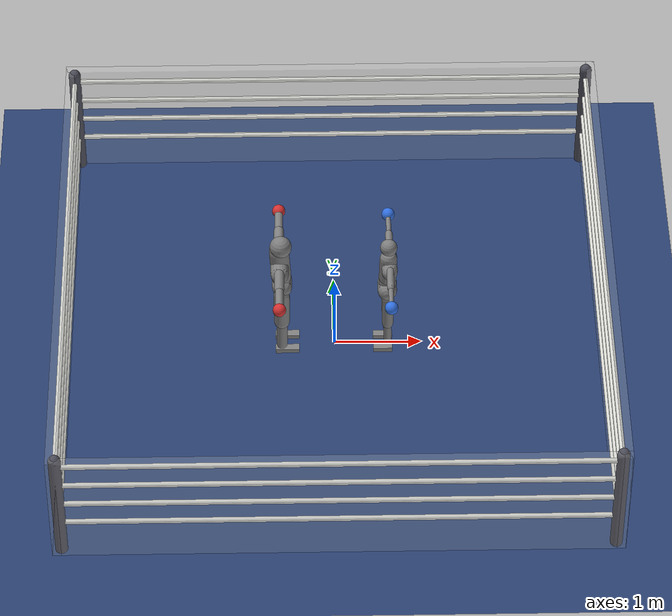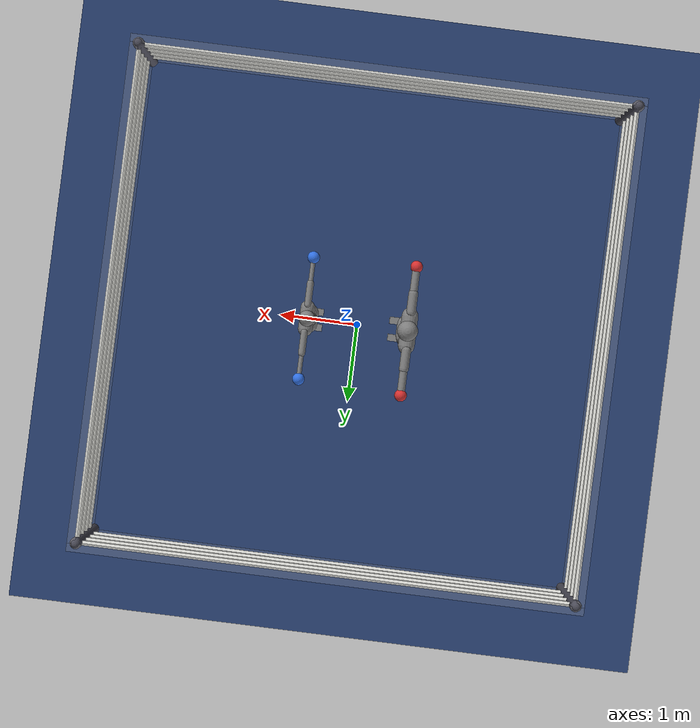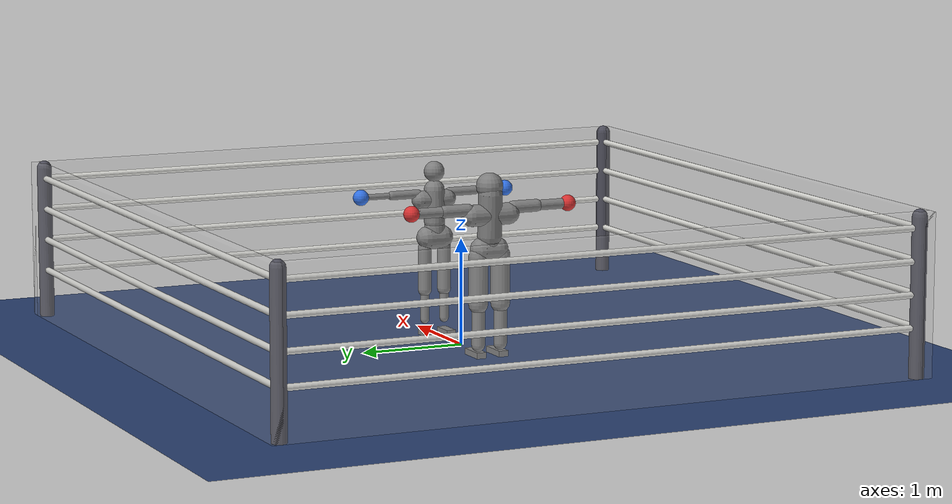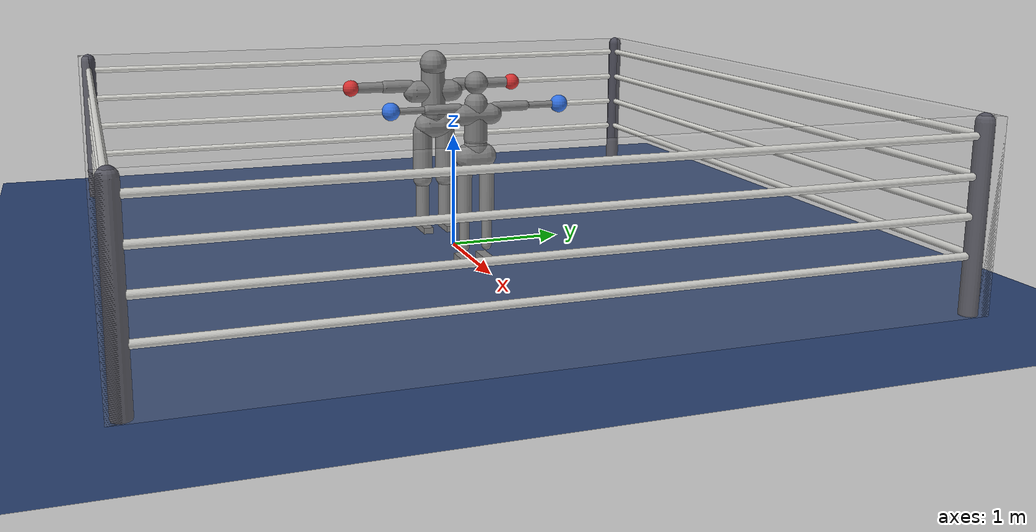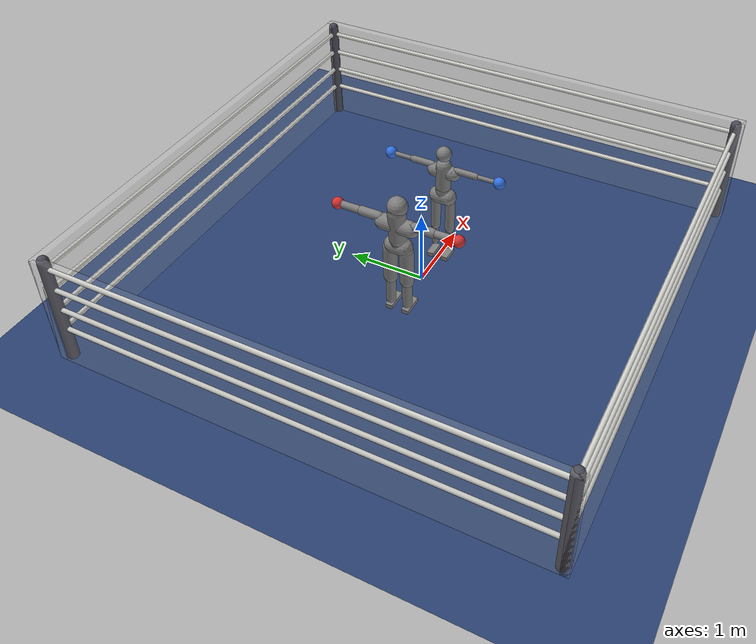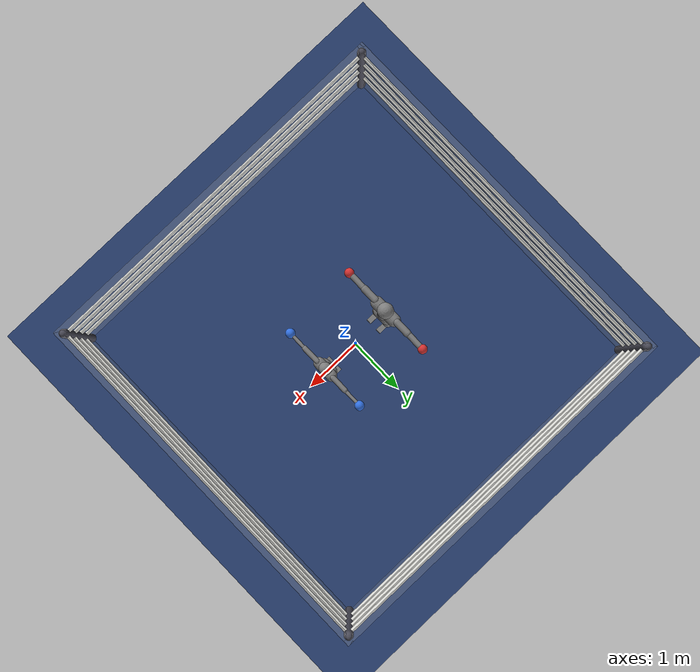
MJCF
<mujoco model="trump_vs_nick_spar">
  <compiler angle="degree" inertiafromgeom="true" autolimits="true"/>
  <option timestep="0.005" iterations="10" ls_iterations="10" integrator="implicitfast">
    <flag eulerdamp="disable"/>
  </option>
  <default>
    <geom contype="1" conaffinity="1" condim="3" friction="1.0 0.005 0.0001" density="1000" margin="0"/>
    <joint limited="true"/>
    <position ctrllimited="true"/>
  </default>
  <asset>
    <texture name="grid" type="2d" builtin="checker" rgb1=".18 .28 .48" rgb2=".14 .22 .40" width="300" height="300"/>
    <material name="grid" texture="grid" texrepeat="6 6" reflectance="0"/>
  </asset>
  <worldbody>
    <light pos="0 0 5" dir="0 0 -1" directional="true"/>
    <geom name="floor" type="plane" contype="3" conaffinity="3" size="0 0 0.05" material="grid" friction="1.0 0.005 0.0001"/>
    <geom name="rope_n" type="box" pos="0.0000 3.1000 0.7500" size="3.1500 0.0500 0.7500" rgba="0.8 0.8 0.8 0.15"/>
    <geom name="rope_s" type="box" pos="0.0000 -3.1000 0.7500" size="3.1500 0.0500 0.7500" rgba="0.8 0.8 0.8 0.15"/>
    <geom name="rope_e" type="box" pos="3.1000 0.0000 0.7500" size="0.0500 3.1500 0.7500" rgba="0.8 0.8 0.8 0.15"/>
    <geom name="rope_w" type="box" pos="-3.1000 0.0000 0.7500" size="0.0500 3.1500 0.7500" rgba="0.8 0.8 0.8 0.15"/>
    <body name="a_pelvis" pos="-0.6000 0.0000 0.9982" quat="1.00000 0 0 0.00000">
      <freejoint name="a_root"/>
      <geom name="a_pelvis_geom" type="capsule" fromto="0.0000 -0.0700 0.0000 0.0000 0.0700 0.0000" size="0.1121" mass="9.6630" />
      <geom name="a_pelvis_up" type="capsule" fromto="0.0000 0.0000 0.0000 -0.0074 0.0000 0.0765" size="0.1009" mass="5.7156" />
      <body name="a_torso" pos="-0.0074 0.0000 0.0965">
        <joint name="a_abdomen_z" type="hinge" axis="0 0 1" range="-45 45" damping="0.5" armature="0.08" stiffness="0"/>
        <joint name="a_abdomen_y" type="hinge" axis="0 1 0" range="-60 30" damping="0.5" armature="0.08" stiffness="0"/>
        <joint name="a_abdomen_x" type="hinge" axis="1 0 0" range="-35 35" damping="0.5" armature="0.08" stiffness="0"/>
        <geom name="a_torso_geom" type="capsule" fromto="0.0000 0.0000 0.0200 -0.0223 0.0000 0.4131" size="0.1121" mass="38.4465" />
        <geom name="a_chest_geom" type="capsule" fromto="-0.0178 -0.1841 0.2257 -0.0178 0.1841 0.2257" size="0.1009" mass="0.5"/>
        <geom name="a_head_geom" type="sphere" pos="-0.0037 0.0000 0.4861" size="0.1250" mass="8.7723" />
        <body name="a_upper_arm_l" pos="-0.0223 0.2301 0.2821">
          <joint name="a_shoulder_x_l" type="hinge" axis="1 0 0" range="-170 30" damping="0.5" armature="0.03" stiffness="0"/>
          <joint name="a_shoulder_z_l" type="hinge" axis="0 0 1" range="-110 110" damping="0.5" armature="0.03" stiffness="0"/>
          <geom name="a_upper_arm_l_geom" type="capsule" fromto="0.0000 0.0000 0.0000 0.0000 0.2324 0.0000" size="0.0580" mass="3.0324" />
          <body name="a_forearm_l" pos="0.0000 0.2324 0.0000">
            <joint name="a_elbow_l" type="hinge" axis="0 0 1" range="-150 0" damping="0.5" armature="0.02" stiffness="0"/>
            <geom name="a_forearm_l_geom" type="capsule" fromto="0.0000 0.0000 0.0000 0.0000 0.2561 0.0000" size="0.0480" mass="1.7328" />
            <geom name="a_glove_l" type="sphere" pos="0.0000 0.3236 0.0000" size="0.0750" mass="0.9328" rgba="0.85 0.2 0.2 1"/>
          </body>
        </body>
        <body name="a_upper_arm_r" pos="-0.0223 -0.2301 0.2821">
          <joint name="a_shoulder_x_r" type="hinge" axis="1 0 0" range="-30 170" damping="0.5" armature="0.03" stiffness="0"/>
          <joint name="a_shoulder_z_r" type="hinge" axis="0 0 1" range="-110 110" damping="0.5" armature="0.03" stiffness="0"/>
          <geom name="a_upper_arm_r_geom" type="capsule" fromto="0.0000 0.0000 0.0000 0.0000 -0.2324 0.0000" size="0.0580" mass="3.0324" />
          <body name="a_forearm_r" pos="0.0000 -0.2324 0.0000">
            <joint name="a_elbow_r" type="hinge" axis="0 0 1" range="0 150" damping="0.5" armature="0.02" stiffness="0"/>
            <geom name="a_forearm_r_geom" type="capsule" fromto="0.0000 0.0000 0.0000 0.0000 -0.2561 0.0000" size="0.0480" mass="1.7328" />
            <geom name="a_glove_r" type="sphere" pos="0.0000 -0.3236 0.0000" size="0.0750" mass="0.9328" rgba="0.85 0.2 0.2 1"/>
          </body>
        </body>
      </body>
      <body name="a_thigh_l" pos="-0.0074 0.1113 -0.0593">
        <joint name="a_hip_x_l" type="hinge" axis="1 0 0" range="-40 40" damping="0.5" armature="0.1" stiffness="0"/>
        <joint name="a_hip_z_l" type="hinge" axis="0 0 1" range="-35 35" damping="0.5" armature="0.1" stiffness="0"/>
        <joint name="a_hip_y_l" type="hinge" axis="0 1 0" range="-120 30" damping="0.5" armature="0.1" stiffness="0"/>
        <geom name="a_thigh_l_geom" type="capsule" fromto="0.0000 0.0000 0.0000 0.0000 0.0000 -0.4454" size="0.0900" mass="10.8300" />
        <body name="a_shin_l" pos="0.0000 0.0000 -0.4454">
          <joint name="a_knee_l" type="hinge" axis="0 1 0" range="0 150" damping="0.5" armature="0.1" stiffness="0"/>
          <geom name="a_shin_l_geom" type="capsule" fromto="0.0000 0.0000 0.0000 0.0000 0.0000 -0.3790" size="0.0620" mass="5.0359" />
          <body name="a_foot_l" pos="0.0000 0.0000 -0.3790">
            <joint name="a_ankle_y_l" type="hinge" axis="0 1 0" range="-20 50" damping="0.5" armature="0.03" stiffness="0"/>
            <joint name="a_ankle_x_l" type="hinge" axis="1 0 0" range="-25 25" damping="0.5" armature="0.03" stiffness="0"/>
            <geom name="a_foot_l_geom" type="box" pos="0.0627 0.0000 -0.0870" size="0.1363 0.0450 0.0280" mass="1.5704" friction="1.0 0.005 0.0001"/>
            <site name="a_foot_l_site" pos="0.0627 0.0000 -0.0870" size="0.01"/>
          </body>
        </body>
      </body>
      <body name="a_thigh_r" pos="-0.0074 -0.1113 -0.0593">
        <joint name="a_hip_x_r" type="hinge" axis="1 0 0" range="-40 40" damping="0.5" armature="0.1" stiffness="0"/>
        <joint name="a_hip_z_r" type="hinge" axis="0 0 1" range="-35 35" damping="0.5" armature="0.1" stiffness="0"/>
        <joint name="a_hip_y_r" type="hinge" axis="0 1 0" range="-120 30" damping="0.5" armature="0.1" stiffness="0"/>
        <geom name="a_thigh_r_geom" type="capsule" fromto="0.0000 0.0000 0.0000 0.0000 0.0000 -0.4454" size="0.0900" mass="10.8300" />
        <body name="a_shin_r" pos="0.0000 0.0000 -0.4454">
          <joint name="a_knee_r" type="hinge" axis="0 1 0" range="0 150" damping="0.5" armature="0.1" stiffness="0"/>
          <geom name="a_shin_r_geom" type="capsule" fromto="0.0000 0.0000 0.0000 0.0000 0.0000 -0.3790" size="0.0620" mass="5.0359" />
          <body name="a_foot_r" pos="0.0000 0.0000 -0.3790">
            <joint name="a_ankle_y_r" type="hinge" axis="0 1 0" range="-20 50" damping="0.5" armature="0.03" stiffness="0"/>
            <joint name="a_ankle_x_r" type="hinge" axis="1 0 0" range="-25 25" damping="0.5" armature="0.03" stiffness="0"/>
            <geom name="a_foot_r_geom" type="box" pos="0.0627 0.0000 -0.0870" size="0.1363 0.0450 0.0280" mass="1.5704" friction="1.0 0.005 0.0001"/>
            <site name="a_foot_r_site" pos="0.0627 0.0000 -0.0870" size="0.01"/>
          </body>
        </body>
      </body>
    </body>
    <body name="b_pelvis" pos="0.6000 0.0000 0.9269" quat="0.00000 0 0 1.00000">
      <freejoint name="b_root"/>
      <geom name="b_pelvis_geom" type="capsule" fromto="0.0000 -0.0700 0.0000 0.0000 0.0700 0.0000" size="0.1090" mass="4.9049" />
      <geom name="b_pelvis_up" type="capsule" fromto="0.0000 0.0000 0.0000 -0.0026 0.0000 0.1033" size="0.0981" mass="3.2601" />
      <body name="b_torso" pos="-0.0026 0.0000 0.1233">
        <joint name="b_abdomen_z" type="hinge" axis="0 0 1" range="-45 45" damping="0.5" armature="0.08" stiffness="0"/>
        <joint name="b_abdomen_y" type="hinge" axis="0 1 0" range="-60 30" damping="0.5" armature="0.08" stiffness="0"/>
        <joint name="b_abdomen_x" type="hinge" axis="1 0 0" range="-35 35" damping="0.5" armature="0.08" stiffness="0"/>
        <geom name="b_torso_geom" type="capsule" fromto="0.0000 0.0000 0.0200 -0.0072 0.0000 0.3240" size="0.0987" mass="20.4125" />
        <geom name="b_chest_geom" type="capsule" fromto="-0.0187 -0.1313 0.2370 -0.0187 0.1313 0.2370" size="0.0888" mass="0.5"/>
        <geom name="b_head_geom" type="sphere" pos="-0.0087 0.0000 0.5025" size="0.0973" mass="4.6575" />
        <body name="b_upper_arm_l" pos="-0.0234 0.1641 0.2962">
          <joint name="b_shoulder_x_l" type="hinge" axis="1 0 0" range="-170 30" damping="0.5" armature="0.03" stiffness="0"/>
          <joint name="b_shoulder_z_l" type="hinge" axis="0 0 1" range="-110 110" damping="0.5" armature="0.03" stiffness="0"/>
          <geom name="b_upper_arm_l_geom" type="capsule" fromto="0.0000 0.0000 0.0000 0.0000 0.2664 0.0000" size="0.0419" mass="1.6100" />
          <body name="b_forearm_l" pos="0.0000 0.2664 0.0000">
            <joint name="b_elbow_l" type="hinge" axis="0 0 1" range="-150 0" damping="0.5" armature="0.02" stiffness="0"/>
            <geom name="b_forearm_l_geom" type="capsule" fromto="0.0000 0.0000 0.0000 0.0000 0.2467 0.0000" size="0.0280" mass="0.9200" />
            <geom name="b_glove_l" type="sphere" pos="0.0000 0.3142 0.0000" size="0.0750" mass="0.6280" rgba="0.2 0.45 0.9 1"/>
          </body>
        </body>
        <body name="b_upper_arm_r" pos="-0.0234 -0.1641 0.2962">
          <joint name="b_shoulder_x_r" type="hinge" axis="1 0 0" range="-30 170" damping="0.5" armature="0.03" stiffness="0"/>
          <joint name="b_shoulder_z_r" type="hinge" axis="0 0 1" range="-110 110" damping="0.5" armature="0.03" stiffness="0"/>
          <geom name="b_upper_arm_r_geom" type="capsule" fromto="0.0000 0.0000 0.0000 0.0000 -0.2664 0.0000" size="0.0419" mass="1.6100" />
          <body name="b_forearm_r" pos="0.0000 -0.2664 0.0000">
            <joint name="b_elbow_r" type="hinge" axis="0 0 1" range="0 150" damping="0.5" armature="0.02" stiffness="0"/>
            <geom name="b_forearm_r_geom" type="capsule" fromto="0.0000 0.0000 0.0000 0.0000 -0.2467 0.0000" size="0.0280" mass="0.9200" />
            <geom name="b_glove_r" type="sphere" pos="0.0000 -0.3142 0.0000" size="0.0750" mass="0.6280" rgba="0.2 0.45 0.9 1"/>
          </body>
        </body>
      </body>
      <body name="b_thigh_l" pos="-0.0079 0.1002 -0.0993">
        <joint name="b_hip_x_l" type="hinge" axis="1 0 0" range="-40 40" damping="0.5" armature="0.1" stiffness="0"/>
        <joint name="b_hip_z_l" type="hinge" axis="0 0 1" range="-35 35" damping="0.5" armature="0.1" stiffness="0"/>
        <joint name="b_hip_y_l" type="hinge" axis="0 1 0" range="-120 30" damping="0.5" armature="0.1" stiffness="0"/>
        <geom name="b_thigh_l_geom" type="capsule" fromto="0.0000 0.0000 0.0000 0.0000 0.0000 -0.4004" size="0.0639" mass="5.7500" />
        <body name="b_shin_l" pos="0.0000 0.0000 -0.4004">
          <joint name="b_knee_l" type="hinge" axis="0 1 0" range="0 150" damping="0.5" armature="0.1" stiffness="0"/>
          <geom name="b_shin_l_geom" type="capsule" fromto="0.0000 0.0000 0.0000 0.0000 0.0000 -0.2841" size="0.0429" mass="2.6738" />
          <body name="b_foot_l" pos="0.0000 0.0000 -0.2841">
            <joint name="b_ankle_y_l" type="hinge" axis="0 1 0" range="-20 50" damping="0.5" armature="0.03" stiffness="0"/>
            <joint name="b_ankle_x_l" type="hinge" axis="1 0 0" range="-25 25" damping="0.5" armature="0.03" stiffness="0"/>
            <geom name="b_foot_l_geom" type="box" pos="0.0506 0.0000 -0.1233" size="0.1100 0.0450 0.0280" mass="0.8337" friction="1.0 0.005 0.0001"/>
            <site name="b_foot_l_site" pos="0.0506 0.0000 -0.1233" size="0.01"/>
          </body>
        </body>
      </body>
      <body name="b_thigh_r" pos="-0.0079 -0.1002 -0.0993">
        <joint name="b_hip_x_r" type="hinge" axis="1 0 0" range="-40 40" damping="0.5" armature="0.1" stiffness="0"/>
        <joint name="b_hip_z_r" type="hinge" axis="0 0 1" range="-35 35" damping="0.5" armature="0.1" stiffness="0"/>
        <joint name="b_hip_y_r" type="hinge" axis="0 1 0" range="-120 30" damping="0.5" armature="0.1" stiffness="0"/>
        <geom name="b_thigh_r_geom" type="capsule" fromto="0.0000 0.0000 0.0000 0.0000 0.0000 -0.4004" size="0.0639" mass="5.7500" />
        <body name="b_shin_r" pos="0.0000 0.0000 -0.4004">
          <joint name="b_knee_r" type="hinge" axis="0 1 0" range="0 150" damping="0.5" armature="0.1" stiffness="0"/>
          <geom name="b_shin_r_geom" type="capsule" fromto="0.0000 0.0000 0.0000 0.0000 0.0000 -0.2841" size="0.0429" mass="2.6738" />
          <body name="b_foot_r" pos="0.0000 0.0000 -0.2841">
            <joint name="b_ankle_y_r" type="hinge" axis="0 1 0" range="-20 50" damping="0.5" armature="0.03" stiffness="0"/>
            <joint name="b_ankle_x_r" type="hinge" axis="1 0 0" range="-25 25" damping="0.5" armature="0.03" stiffness="0"/>
            <geom name="b_foot_r_geom" type="box" pos="0.0506 0.0000 -0.1233" size="0.1100 0.0450 0.0280" mass="0.8337" friction="1.0 0.005 0.0001"/>
            <site name="b_foot_r_site" pos="0.0506 0.0000 -0.1233" size="0.01"/>
          </body>
        </body>
      </body>
    </body>
      <geom name="rope_n_0" type="capsule" fromto="-3.05 3.05 0.45 3.05 3.05 0.45" size="0.03" solref="0.2 1" contype="3" conaffinity="3" rgba="0.86 0.86 0.84 1"/>
    <geom name="rope_s_0" type="capsule" fromto="-3.05 -3.05 0.45 3.05 -3.05 0.45" size="0.03" solref="0.2 1" contype="3" conaffinity="3" rgba="0.86 0.86 0.84 1"/>
    <geom name="rope_e_0" type="capsule" fromto="3.05 -3.05 0.45 3.05 3.05 0.45" size="0.03" solref="0.2 1" contype="3" conaffinity="3" rgba="0.86 0.86 0.84 1"/>
    <geom name="rope_w_0" type="capsule" fromto="-3.05 -3.05 0.45 -3.05 3.05 0.45" size="0.03" solref="0.2 1" contype="3" conaffinity="3" rgba="0.86 0.86 0.84 1"/>
    <geom name="rope_n_1" type="capsule" fromto="-3.05 3.05 0.75 3.05 3.05 0.75" size="0.03" solref="0.2 1" contype="3" conaffinity="3" rgba="0.86 0.86 0.84 1"/>
    <geom name="rope_s_1" type="capsule" fromto="-3.05 -3.05 0.75 3.05 -3.05 0.75" size="0.03" solref="0.2 1" contype="3" conaffinity="3" rgba="0.86 0.86 0.84 1"/>
    <geom name="rope_e_1" type="capsule" fromto="3.05 -3.05 0.75 3.05 3.05 0.75" size="0.03" solref="0.2 1" contype="3" conaffinity="3" rgba="0.86 0.86 0.84 1"/>
    <geom name="rope_w_1" type="capsule" fromto="-3.05 -3.05 0.75 -3.05 3.05 0.75" size="0.03" solref="0.2 1" contype="3" conaffinity="3" rgba="0.86 0.86 0.84 1"/>
    <geom name="rope_n_2" type="capsule" fromto="-3.05 3.05 1.05 3.05 3.05 1.05" size="0.03" solref="0.2 1" contype="3" conaffinity="3" rgba="0.86 0.86 0.84 1"/>
    <geom name="rope_s_2" type="capsule" fromto="-3.05 -3.05 1.05 3.05 -3.05 1.05" size="0.03" solref="0.2 1" contype="3" conaffinity="3" rgba="0.86 0.86 0.84 1"/>
    <geom name="rope_e_2" type="capsule" fromto="3.05 -3.05 1.05 3.05 3.05 1.05" size="0.03" solref="0.2 1" contype="3" conaffinity="3" rgba="0.86 0.86 0.84 1"/>
    <geom name="rope_w_2" type="capsule" fromto="-3.05 -3.05 1.05 -3.05 3.05 1.05" size="0.03" solref="0.2 1" contype="3" conaffinity="3" rgba="0.86 0.86 0.84 1"/>
    <geom name="rope_n_3" type="capsule" fromto="-3.05 3.05 1.35 3.05 3.05 1.35" size="0.03" solref="0.2 1" contype="3" conaffinity="3" rgba="0.86 0.86 0.84 1"/>
    <geom name="rope_s_3" type="capsule" fromto="-3.05 -3.05 1.35 3.05 -3.05 1.35" size="0.03" solref="0.2 1" contype="3" conaffinity="3" rgba="0.86 0.86 0.84 1"/>
    <geom name="rope_e_3" type="capsule" fromto="3.05 -3.05 1.35 3.05 3.05 1.35" size="0.03" solref="0.2 1" contype="3" conaffinity="3" rgba="0.86 0.86 0.84 1"/>
    <geom name="rope_w_3" type="capsule" fromto="-3.05 -3.05 1.35 -3.05 3.05 1.35" size="0.03" solref="0.2 1" contype="3" conaffinity="3" rgba="0.86 0.86 0.84 1"/>
    <geom name="post_ne" type="capsule" fromto="3.05 3.05 0 3.05 3.05 1.45" size="0.07" contype="3" conaffinity="3" rgba="0.3 0.3 0.35 1"/>
    <geom name="post_nw" type="capsule" fromto="-3.05 3.05 0 -3.05 3.05 1.45" size="0.07" contype="3" conaffinity="3" rgba="0.3 0.3 0.35 1"/>
    <geom name="post_se" type="capsule" fromto="3.05 -3.05 0 3.05 -3.05 1.45" size="0.07" contype="3" conaffinity="3" rgba="0.3 0.3 0.35 1"/>
    <geom name="post_sw" type="capsule" fromto="-3.05 -3.05 0 -3.05 -3.05 1.45" size="0.07" contype="3" conaffinity="3" rgba="0.3 0.3 0.35 1"/>
  </worldbody>
  <contact>
    <exclude body1="a_pelvis" body2="a_torso"/>
    <exclude body1="a_pelvis" body2="a_thigh_l"/>
    <exclude body1="a_thigh_l" body2="a_shin_l"/>
    <exclude body1="a_shin_l" body2="a_foot_l"/>
    <exclude body1="a_torso" body2="a_upper_arm_l"/>
    <exclude body1="a_upper_arm_l" body2="a_forearm_l"/>
    <exclude body1="a_pelvis" body2="a_thigh_r"/>
    <exclude body1="a_thigh_r" body2="a_shin_r"/>
    <exclude body1="a_shin_r" body2="a_foot_r"/>
    <exclude body1="a_torso" body2="a_upper_arm_r"/>
    <exclude body1="a_upper_arm_r" body2="a_forearm_r"/>
    <exclude body1="b_pelvis" body2="b_torso"/>
    <exclude body1="b_pelvis" body2="b_thigh_l"/>
    <exclude body1="b_thigh_l" body2="b_shin_l"/>
    <exclude body1="b_shin_l" body2="b_foot_l"/>
    <exclude body1="b_torso" body2="b_upper_arm_l"/>
    <exclude body1="b_upper_arm_l" body2="b_forearm_l"/>
    <exclude body1="b_pelvis" body2="b_thigh_r"/>
    <exclude body1="b_thigh_r" body2="b_shin_r"/>
    <exclude body1="b_shin_r" body2="b_foot_r"/>
    <exclude body1="b_torso" body2="b_upper_arm_r"/>
    <exclude body1="b_upper_arm_r" body2="b_forearm_r"/>
  </contact>
  <actuator>
    <position name="a_abdomen_z" joint="a_abdomen_z" kp="495.9" kv="23.142" forcerange="-187.34 187.34" ctrlrange="-0.7854 0.7854"/>
    <position name="a_abdomen_y" joint="a_abdomen_y" kp="495.9" kv="23.142" forcerange="-187.34 187.34" ctrlrange="-1.0472 0.5236"/>
    <position name="a_abdomen_x" joint="a_abdomen_x" kp="495.9" kv="23.142" forcerange="-187.34 187.34" ctrlrange="-0.6109 0.6109"/>
    <position name="a_shoulder_x_l" joint="a_shoulder_x_l" kp="176.32" kv="8.816" forcerange="-110.2 110.2" ctrlrange="-2.9671 0.5236"/>
    <position name="a_shoulder_z_l" joint="a_shoulder_z_l" kp="176.32" kv="8.816" forcerange="-110.2 110.2" ctrlrange="-1.9199 1.9199"/>
    <position name="a_elbow_l" joint="a_elbow_l" kp="121.22" kv="6.061" forcerange="-77.14 77.14" ctrlrange="-2.6180 0.0000"/>
    <position name="a_shoulder_x_r" joint="a_shoulder_x_r" kp="176.32" kv="8.816" forcerange="-110.2 110.2" ctrlrange="-0.5236 2.9671"/>
    <position name="a_shoulder_z_r" joint="a_shoulder_z_r" kp="176.32" kv="8.816" forcerange="-110.2 110.2" ctrlrange="-1.9199 1.9199"/>
    <position name="a_elbow_r" joint="a_elbow_r" kp="121.22" kv="6.061" forcerange="-77.14 77.14" ctrlrange="0.0000 2.6180"/>
    <position name="a_hip_x_l" joint="a_hip_x_l" kp="661.2" kv="33.06" forcerange="-264.48 264.48" ctrlrange="-0.6981 0.6981"/>
    <position name="a_hip_z_l" joint="a_hip_z_l" kp="661.2" kv="33.06" forcerange="-264.48 264.48" ctrlrange="-0.6109 0.6109"/>
    <position name="a_hip_y_l" joint="a_hip_y_l" kp="661.2" kv="33.06" forcerange="-264.48 264.48" ctrlrange="-2.0944 0.5236"/>
    <position name="a_knee_l" joint="a_knee_l" kp="661.2" kv="33.06" forcerange="-286.52 286.52" ctrlrange="0.0000 2.6180"/>
    <position name="a_ankle_y_l" joint="a_ankle_y_l" kp="826.5" kv="33.06" forcerange="-242.44 242.44" ctrlrange="-0.3491 0.8727"/>
    <position name="a_ankle_x_l" joint="a_ankle_x_l" kp="88.16" kv="4.408" forcerange="-66.12 66.12" ctrlrange="-0.4363 0.4363"/>
    <position name="a_hip_x_r" joint="a_hip_x_r" kp="661.2" kv="33.06" forcerange="-264.48 264.48" ctrlrange="-0.6981 0.6981"/>
    <position name="a_hip_z_r" joint="a_hip_z_r" kp="661.2" kv="33.06" forcerange="-264.48 264.48" ctrlrange="-0.6109 0.6109"/>
    <position name="a_hip_y_r" joint="a_hip_y_r" kp="661.2" kv="33.06" forcerange="-264.48 264.48" ctrlrange="-2.0944 0.5236"/>
    <position name="a_knee_r" joint="a_knee_r" kp="661.2" kv="33.06" forcerange="-286.52 286.52" ctrlrange="0.0000 2.6180"/>
    <position name="a_ankle_y_r" joint="a_ankle_y_r" kp="826.5" kv="33.06" forcerange="-242.44 242.44" ctrlrange="-0.3491 0.8727"/>
    <position name="a_ankle_x_r" joint="a_ankle_x_r" kp="88.16" kv="4.408" forcerange="-66.12 66.12" ctrlrange="-0.4363 0.4363"/>
    <position name="b_abdomen_z" joint="b_abdomen_z" kp="373.95" kv="17.451" forcerange="-141.27 141.27" ctrlrange="-0.7854 0.7854"/>
    <position name="b_abdomen_y" joint="b_abdomen_y" kp="373.95" kv="17.451" forcerange="-141.27 141.27" ctrlrange="-1.0472 0.5236"/>
    <position name="b_abdomen_x" joint="b_abdomen_x" kp="373.95" kv="17.451" forcerange="-141.27 141.27" ctrlrange="-0.6109 0.6109"/>
    <position name="b_shoulder_x_l" joint="b_shoulder_x_l" kp="132.96" kv="6.648" forcerange="-83.1 83.1" ctrlrange="-2.9671 0.5236"/>
    <position name="b_shoulder_z_l" joint="b_shoulder_z_l" kp="132.96" kv="6.648" forcerange="-83.1 83.1" ctrlrange="-1.9199 1.9199"/>
    <position name="b_elbow_l" joint="b_elbow_l" kp="91.41" kv="4.571" forcerange="-58.17 58.17" ctrlrange="-2.6180 0.0000"/>
    <position name="b_shoulder_x_r" joint="b_shoulder_x_r" kp="132.96" kv="6.648" forcerange="-83.1 83.1" ctrlrange="-0.5236 2.9671"/>
    <position name="b_shoulder_z_r" joint="b_shoulder_z_r" kp="132.96" kv="6.648" forcerange="-83.1 83.1" ctrlrange="-1.9199 1.9199"/>
    <position name="b_elbow_r" joint="b_elbow_r" kp="91.41" kv="4.571" forcerange="-58.17 58.17" ctrlrange="0.0000 2.6180"/>
    <position name="b_hip_x_l" joint="b_hip_x_l" kp="498.6" kv="24.93" forcerange="-199.44 199.44" ctrlrange="-0.6981 0.6981"/>
    <position name="b_hip_z_l" joint="b_hip_z_l" kp="498.6" kv="24.93" forcerange="-199.44 199.44" ctrlrange="-0.6109 0.6109"/>
    <position name="b_hip_y_l" joint="b_hip_y_l" kp="498.6" kv="24.93" forcerange="-199.44 199.44" ctrlrange="-2.0944 0.5236"/>
    <position name="b_knee_l" joint="b_knee_l" kp="498.6" kv="24.93" forcerange="-216.06 216.06" ctrlrange="0.0000 2.6180"/>
    <position name="b_ankle_y_l" joint="b_ankle_y_l" kp="623.25" kv="24.93" forcerange="-182.82 182.82" ctrlrange="-0.3491 0.8727"/>
    <position name="b_ankle_x_l" joint="b_ankle_x_l" kp="66.48" kv="3.324" forcerange="-49.86 49.86" ctrlrange="-0.4363 0.4363"/>
    <position name="b_hip_x_r" joint="b_hip_x_r" kp="498.6" kv="24.93" forcerange="-199.44 199.44" ctrlrange="-0.6981 0.6981"/>
    <position name="b_hip_z_r" joint="b_hip_z_r" kp="498.6" kv="24.93" forcerange="-199.44 199.44" ctrlrange="-0.6109 0.6109"/>
    <position name="b_hip_y_r" joint="b_hip_y_r" kp="498.6" kv="24.93" forcerange="-199.44 199.44" ctrlrange="-2.0944 0.5236"/>
    <position name="b_knee_r" joint="b_knee_r" kp="498.6" kv="24.93" forcerange="-216.06 216.06" ctrlrange="0.0000 2.6180"/>
    <position name="b_ankle_y_r" joint="b_ankle_y_r" kp="623.25" kv="24.93" forcerange="-182.82 182.82" ctrlrange="-0.3491 0.8727"/>
    <position name="b_ankle_x_r" joint="b_ankle_x_r" kp="66.48" kv="3.324" forcerange="-49.86 49.86" ctrlrange="-0.4363 0.4363"/>
  </actuator>
  <keyframe>
    <key name="stand" qpos="-0.6000 0.0000 0.9790 1.00000 0 0 0.00000 0.0000 0.0000 0.0000 -1.3265 -0.7330 -1.9548 1.3265 0.7330 1.9548 0.0000 0.0000 -0.1656 0.4538 -0.2882 0.0000 0.0000 0.0000 -0.1656 0.4538 -0.2882 0.0000 0.6000 0.0000 0.9199 0.00000 0 0 1.00000 0.0000 0.0000 0.0000 -1.3265 -0.7330 -1.9548 1.3265 0.7330 1.9548 0.0000 0.0000 -0.1635 0.4538 -0.2902 0.0000 0.0000 0.0000 -0.1635 0.4538 -0.2902 0.0000"/>
  </keyframe>
</mujoco>
